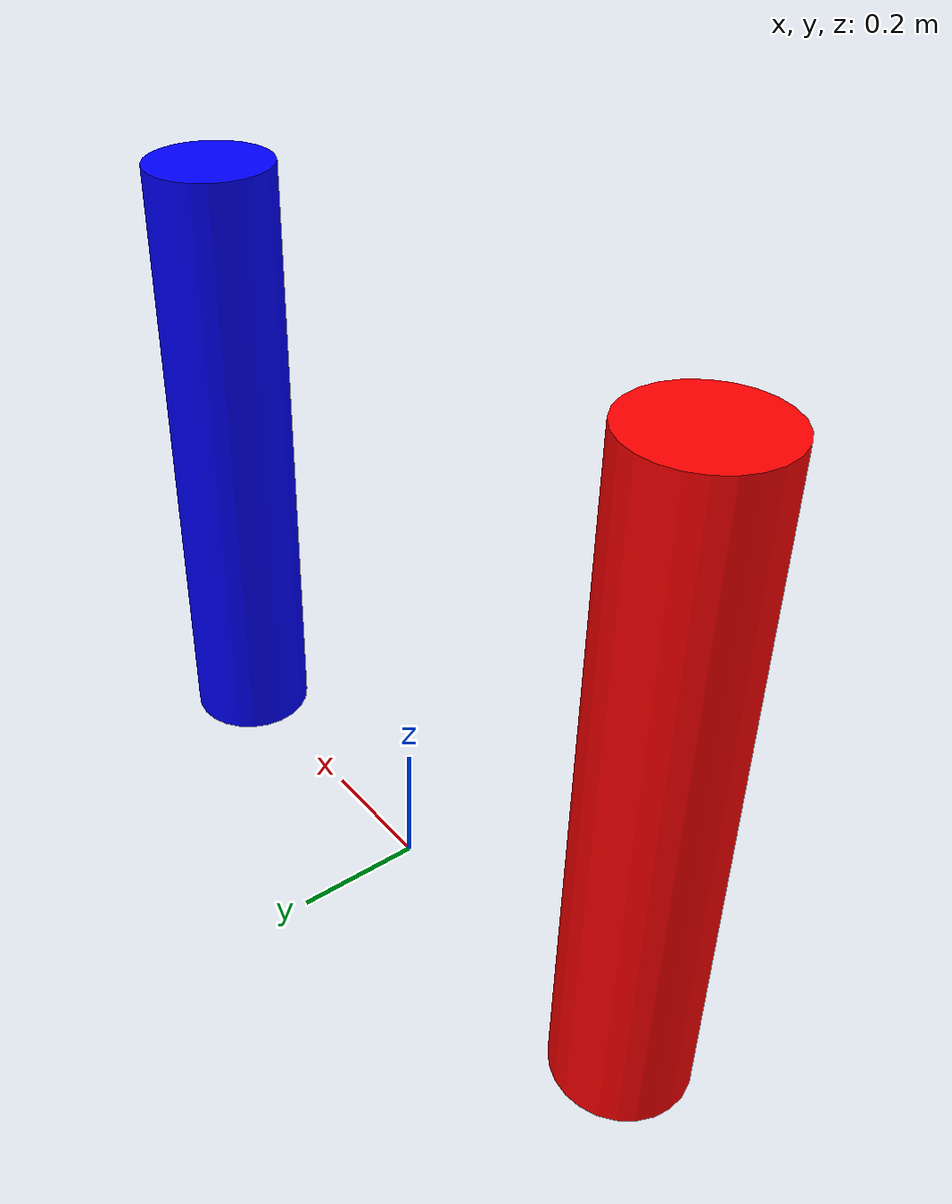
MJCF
<mujoco>
    <option gravity="0 0 -9.81" timestep="0.002" />
    <worldbody>
        <!-- Body 1 -->
        <body name="body1" pos="-0.5 0 0">
            <geom type="cylinder" size="0.1 0.5" pos="0 0 0.5" rgba="1 0 0 1" />
        </body>

        <!-- Body 2 -->
        <body name="body2" pos="0.5 0 0">
            <geom type="cylinder" size="0.1 0.5" pos="0 0 0.5" rgba="0 0 1 1" />
            <!-- Connect to Body 1 with a joint -->
            <joint name="hinge_joint" pos="0 0 0" axis="0 1 0" />
        </body>
    </worldbody>
</mujoco>
